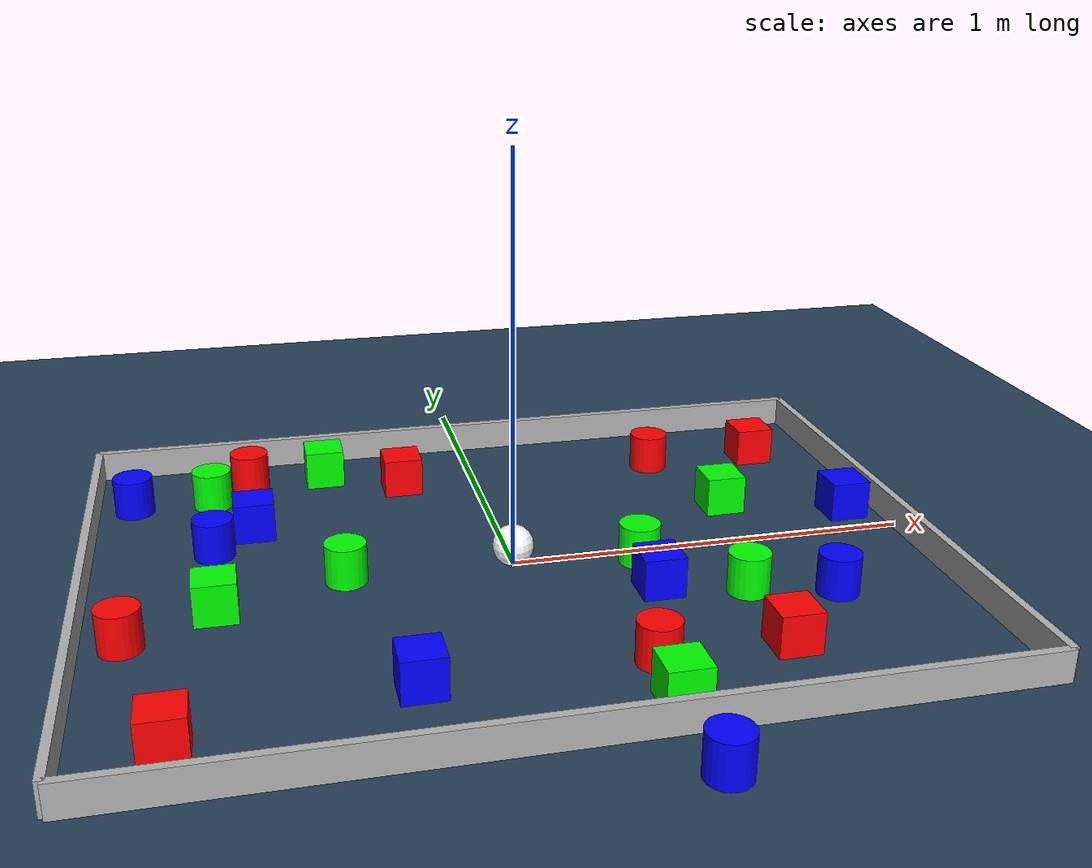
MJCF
<?xml version="1.0" ?>
<mujoco model="multicube_simulation">
    <compiler angle="degree" coordinate="local"/>
    <option timestep="0.001" gravity="0 0 0"/>

    <!-- Worldbody -->
    <worldbody>
        <!-- Ground plane -->
        <geom name="floor" size="0 0 0.05" type="plane" material="groundplane"/>

        <!-- Walls to enclose the space -->
        <body name="wall_x_neg" pos="-1 0 0.025">
            <geom name="wall_x_neg_geom" type="box" size="0.01 0.75 0.05" rgba="0.7 0.7 0.7 1" contype="1" conaffinity="1"/>
            <inertial pos="0 0 0" mass="100.0" diaginertia="10 10 10"/>
        </body>
        <body name="wall_x_pos" pos="1 0 0.025">
            <geom name="wall_x_pos_geom" type="box" size="0.01 0.75 0.05" rgba="0.7 0.7 0.7 1" contype="1" conaffinity="1"/>
            <inertial pos="0 0 0" mass="100.0" diaginertia="10 10 10"/>
        </body>
        <body name="wall_y_neg" pos="0 -0.75 0.025">
            <geom name="wall_y_neg_geom" type="box" size="1 0.01 0.05" rgba="0.7 0.7 0.7 1" contype="1" conaffinity="1"/>
            <inertial pos="0 0 0" mass="100.0" diaginertia="10 10 10"/>
        </body>
        <body name="wall_y_pos" pos="0 0.75 0.025">
            <geom name="wall_y_pos_geom" type="box" size="1 0.01 0.05" rgba="0.7 0.7 0.7 1" contype="1" conaffinity="1"/>
            <inertial pos="0 0 0" mass="100.0" diaginertia="10 10 10"/>
        </body>

        <!-- Sphero -->
        <body name="sphero" pos="0 0 0.05">
            <geom name="white_sphero" type="sphere" size="0.05" rgba="1 1 1 1" contype="1" conaffinity="1"/>
            <joint name="sphero_free_joint" type="free" />
            <inertial pos="0 0 0" mass="0.1" diaginertia="0.01 0.01 0.01"/>
        </body>

        <!-- Red cubes -->
        <body name="red_cube1" pos="-0.8 -0.6 0.05">
            <geom name="red_cube1" type="box" size="0.05 0.05 0.05" rgba="1 0 0 1" contype="1" conaffinity="1"/>
            <joint name="red_cube_free_joint1" type="free" />
            <inertial pos="0 0 0" mass="100.0" diaginertia="10 10 10"/>
        </body>
        <body name="red_cube2" pos="-0.2 0.5 0.05">
            <geom name="red_cube2" type="box" size="0.05 0.05 0.05" rgba="1 0 0 1" contype="1" conaffinity="1"/>
            <joint name="red_cube_free_joint2" type="free" />
            <inertial pos="0 0 0" mass="100.0" diaginertia="10 10 10"/>
        </body>
        <body name="red_cube3" pos="0.5 -0.5 0.05">
            <geom name="red_cube3" type="box" size="0.05 0.05 0.05" rgba="1 0 0 1" contype="1" conaffinity="1"/>
            <joint name="red_cube_free_joint3" type="free" />
            <inertial pos="0 0 0" mass="100.0" diaginertia="10 10 10"/>
        </body>
        <body name="red_cube4" pos="0.8 0.5 0.05">
            <geom name="red_cube4" type="box" size="0.05 0.05 0.05" rgba="1 0 0 1" contype="1" conaffinity="1"/>
            <joint name="red_cube_free_joint4" type="free" />
            <inertial pos="0 0 0" mass="100.0" diaginertia="10 10 10"/>
        </body>

        <!-- Green cubes -->
        <body name="green_cube1" pos="0.6 0.2 0.05">
            <geom name="green_cube1" type="box" size="0.05 0.05 0.05" rgba="0 1 0 1" contype="1" conaffinity="1"/>
            <joint name="green_cube_free_joint1" type="free" />
            <inertial pos="0 0 0" mass="100.0" diaginertia="10 10 10"/>
        </body>
        <body name="green_cube2" pos="-0.7 -0.1 0.05">
            <geom name="green_cube2" type="box" size="0.05 0.05 0.05" rgba="0 1 0 1" contype="1" conaffinity="1"/>
            <joint name="green_cube_free_joint2" type="free" />
            <inertial pos="0 0 0" mass="100.0" diaginertia="10 10 10"/>
        </body>
        <body name="green_cube3" pos="0.2 -0.65 0.05">
            <geom name="green_cube3" type="box" size="0.05 0.05 0.05" rgba="0 1 0 1" contype="1" conaffinity="1"/>
            <joint name="green_cube_free_joint3" type="free" />
            <inertial pos="0 0 0" mass="100.0" diaginertia="10 10 10"/>
        </body>
        <body name="green_cube4" pos="-0.4 0.6 0.05">
            <geom name="green_cube4" type="box" size="0.05 0.05 0.05" rgba="0 1 0 1" contype="1" conaffinity="1"/>
            <joint name="green_cube_free_joint4" type="free" />
            <inertial pos="0 0 0" mass="100.0" diaginertia="10 10 10"/>
        </body>

        <!-- Blue cubes -->
        <body name="blue_cube1" pos="0.9 0.1 0.05">
            <geom name="blue_cube1" type="box" size="0.05 0.05 0.05" rgba="0 0 1 1" contype="1" conaffinity="1"/>
            <joint name="blue_cube_free_joint1" type="free" />
            <inertial pos="0 0 0" mass="100.0" diaginertia="10 10 10"/>
        </body>
        <body name="blue_cube2" pos="0.3 -0.2 0.05">
            <geom name="blue_cube2" type="box" size="0.05 0.05 0.05" rgba="0 0 1 1" contype="1" conaffinity="1"/>
            <joint name="blue_cube_free_joint2" type="free" />
            <inertial pos="0 0 0" mass="100.0" diaginertia="10 10 10"/>
        </body>
        <body name="blue_cube3" pos="-0.3 -0.5 0.05">
            <geom name="blue_cube3" type="box" size="0.05 0.05 0.05" rgba="0 0 1 1" contype="1" conaffinity="1"/>
            <joint name="blue_cube_free_joint3" type="free" />
            <inertial pos="0 0 0" mass="100.0" diaginertia="10 10 10"/>
        </body>
        <body name="blue_cube4" pos="-0.6 0.3 0.05">
            <geom name="blue_cube4" type="box" size="0.05 0.05 0.05" rgba="0 0 1 1" contype="1" conaffinity="1"/>
            <joint name="blue_cube_free_joint4" type="free" />
            <inertial pos="0 0 0" mass="100.0" diaginertia="10 10 10"/>
        </body>

        <!-- Red cylinders -->
        <body name="red_cylinder1" pos="0.2 -0.5 0.05">
            <geom name="red_cylinder1" type="cylinder" size="0.05 0.05" rgba="1 0 0 1" contype="1" conaffinity="1"/>
            <joint name="red_cylinder_free_joint1" type="free" />
            <inertial pos="0 0 0" mass="100.0" diaginertia="10 10 10"/>
        </body>
        <body name="red_cylinder2" pos="0.5 0.5 0.05">
            <geom name="red_cylinder2" type="cylinder" size="0.05 0.05" rgba="1 0 0 1" contype="1" conaffinity="1"/>
            <joint name="red_cylinder_free_joint2" type="free" />
            <inertial pos="0 0 0" mass="100.0" diaginertia="10 10 10"/>
        </body>
        <body name="red_cylinder3" pos="-0.6 0.6 0.05">
            <geom name="red_cylinder3" type="cylinder" size="0.05 0.05" rgba="1 0 0 1" contype="1" conaffinity="1"/>
            <joint name="red_cylinder_free_joint3" type="free" />
            <inertial pos="0 0 0" mass="100.0" diaginertia="10 10 10"/>
        </body>
        <body name="red_cylinder4" pos="-0.9 -0.2 0.05">
            <geom name="red_cylinder4" type="cylinder" size="0.05 0.05" rgba="1 0 0 1" contype="1" conaffinity="1"/>
            <joint name="red_cylinder_free_joint4" type="free" />
            <inertial pos="0 0 0" mass="100.0" diaginertia="10 10 10"/>
        </body>

        <!-- Green cylinders -->
        <body name="green_cylinder1" pos="0.3 -0.05 0.05">
            <geom name="green_cylinder1" type="cylinder" size="0.05 0.05" rgba="0 1 0 1" contype="1" conaffinity="1"/>
            <joint name="green_cylinder_free_joint1" type="free" />
            <inertial pos="0 0 0" mass="100.0" diaginertia="10 10 10"/>
        </body>
        <body name="green_cylinder2" pos="-0.4 0 0.05">
            <geom name="green_cylinder2" type="cylinder" size="0.05 0.05" rgba="0 1 0 1" contype="1" conaffinity="1"/>
            <joint name="green_cylinder_free_joint2" type="free" />
            <inertial pos="0 0 0" mass="100.0" diaginertia="10 10 10"/>
        </body>
        <body name="green_cylinder3" pos="0.5 -0.25 0.05">
            <geom name="green_cylinder3" type="cylinder" size="0.05 0.05" rgba="0 1 0 1" contype="1" conaffinity="1"/>
            <joint name="green_cylinder_free_joint3" type="free" />
            <inertial pos="0 0 0" mass="100.0" diaginertia="10 10 10"/>
        </body>
        <body name="green_cylinder4" pos="-0.7 0.5 0.05">
            <geom name="green_cylinder4" type="cylinder" size="0.05 0.05" rgba="0 1 0 1" contype="1" conaffinity="1"/>
            <joint name="green_cylinder_free_joint4" type="free" />
            <inertial pos="0 0 0" mass="100.0" diaginertia="10 10 10"/>
        </body>

        <!-- Blue cylinders -->
        <body name="blue_cylinder1" pos="0.7 -0.3 0.05">
            <geom name="blue_cylinder1" type="cylinder" size="0.05 0.05" rgba="0 0 1 1" contype="1" conaffinity="1"/>
            <joint name="blue_cylinder_free_joint1" type="free" />
            <inertial pos="0 0 0" mass="100.0" diaginertia="10 10 10"/>
        </body>
        <body name="blue_cylinder2" pos="-0.7 0.2 0.05">
            <geom name="blue_cylinder2" type="cylinder" size="0.05 0.05" rgba="0 0 1 1" contype="1" conaffinity="1"/>
            <joint name="blue_cylinder_free_joint2" type="free" />
            <inertial pos="0 0 0" mass="100.0" diaginertia="10 10 10"/>
        </body>
        <body name="blue_cylinder3" pos="0.2 -0.9 0.05">
            <geom name="blue_cylinder3" type="cylinder" size="0.05 0.05" rgba="0 0 1 1" contype="1" conaffinity="1"/>
            <joint name="blue_cylinder_free_joint3" type="free" />
            <inertial pos="0 0 0" mass="100.0" diaginertia="10 10 10"/>
        </body>
        <body name="blue_cylinder4" pos="-0.9 0.5 0.05">
            <geom name="blue_cylinder4" type="cylinder" size="0.05 0.05" rgba="0 0 1 1" contype="1" conaffinity="1"/>
            <joint name="blue_cylinder_free_joint4" type="free" />
            <inertial pos="0 0 0" mass="100.0" diaginertia="10 10 10"/>
        </body>

        <!-- Floating spotlight -->
        <body name="spotlight_body" pos="0 0 0.5">
            <joint name="spotlight_free_joint" type="free" />
            <light name="spotlight" pos="0 0 0" dir="0 0 -1" diffuse="1 1 1" specular="0.5 0.5 0.5" cutoff="45" exponent="10" directional="false"/>
            <camera name="spotlight_camera" pos="0 0 0.1" mode="trackcom"/>
            <inertial pos="0 0 0" mass="0.01" diaginertia="0.001 0.001 0.001"/>
        </body>

        <!-- Camera -->
        <camera name="fixed" pos="0 0 3" zaxis="0 0 1"/>
    </worldbody>

    <!-- Assets -->
    <asset>
        <texture type="skybox" builtin="gradient" rgb1="0.3 0.5 0.7" rgb2="0 0 0" width="512" height="3072"/>
        <texture type="2d" name="groundplane" builtin="checker" mark="edge" rgb1="0.2 0.3 0.4" rgb2="0.1 0.2 0.3" markrgb="0.8 0.8 0.8" width="300" height="300"/>
        <material name="groundplane" texture="groundplane" texuniform="true" texrepeat="5 5" reflectance="0.2"/>
    </asset>

    <!-- Visual -->
    <visual>
        <map znear="0.1" zfar="50"/>
    </visual>
</mujoco>
